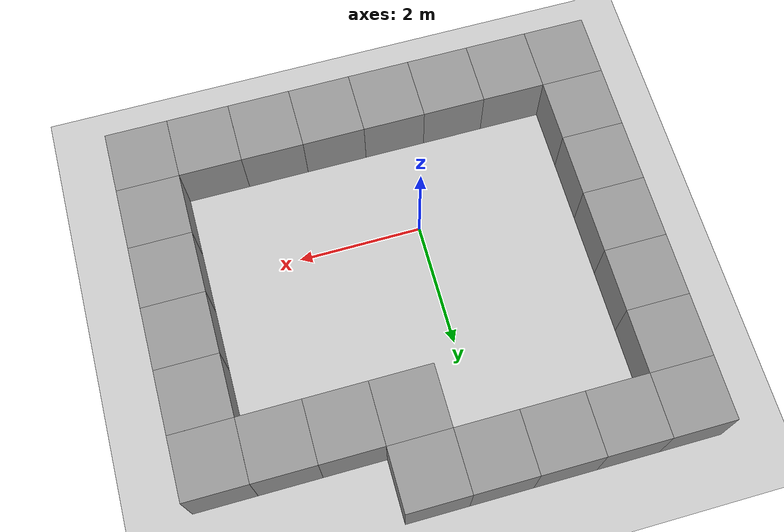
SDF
<sdf version="1.4">
 <world name="default">
  <light name="sun" type="directional">
   <pose>0 0 10 0 -0 0</pose>
   <diffuse>0.8 0.8 0.8 1</diffuse>
   <specular>0.2 0.2 0.2 1</specular>
   <attenuation>
    <range>1000</range>
    <constant>0.9</constant>
    <linear>0.01</linear>
    <quadratic>0.001</quadratic>
   </attenuation>
   <direction>-0.5 0.1 -0.9</direction>
  </light>
  <model name="ground_plane">
   <static>1</static>
   <link name="link">
    <collision name="collision">
     <geometry><plane><normal>0 0 1</normal><size>100 100</size></plane></geometry>
     <surface><friction><ode><mu>100</mu><mu2>50</mu2></ode></friction></surface>
    </collision>
    <visual name="visual">
     <cast_shadows>0</cast_shadows>
     <geometry><plane><normal>0 0 1</normal><size>100 100</size></plane></geometry>
     <material>
      <script><uri>file://media/materials/scripts/gazebo.material</uri><name>Gazebo/Grey</name></script>
     </material>
    </visual>
    <velocity_decay><linear>0</linear><angular>0</angular></velocity_decay>
   </link>
  </model>
  <physics type="ode">
   <max_step_size>0.001</max_step_size>
   <real_time_factor>1</real_time_factor>
   <real_time_update_rate>1000</real_time_update_rate>
   <gravity>0 0 -9.8</gravity>
  </physics>
  <scene><ambient>0.4 0.4 0.4 1</ambient><background>0.7 0.7 0.7 1</background><shadows>1</shadows></scene>
  <spherical_coordinates>
   <surface_model>EARTH_WGS84</surface_model>
   <latitude_deg>0</latitude_deg>
   <longitude_deg>0</longitude_deg>
   <elevation>0</elevation>
   <heading_deg>0</heading_deg>
  </spherical_coordinates>
  <model name="unit_box_1">
   <pose>-3 -2 0.5 0 -0 2e-06</pose>
   <link name="link">
    <inertial>
     <mass>1</mass>
     <inertia><ixx>1</ixx><ixy>0</ixy><ixz>0</ixz><iyy>1</iyy><iyz>0</iyz><izz>1</izz></inertia>
    </inertial>
    <collision name="collision"><geometry><box><size>1 1 1</size></box></geometry></collision>
    <visual name="visual">
     <geometry><box><size>1 1 1</size></box></geometry>
     <material>
      <script><uri>file://media/materials/scripts/gazebo.material</uri><name>Gazebo/Grey</name></script>
     </material>
    </visual>
    <velocity_decay><linear>0</linear><angular>0</angular></velocity_decay>
   </link>
   <static>0</static>
  </model>
  <model name="unit_box_2">
   <pose>-3.00001 -1 0.5 0 -0 1e-06</pose>
   <link name="link">
    <inertial>
     <mass>1</mass>
     <inertia><ixx>1</ixx><ixy>0</ixy><ixz>0</ixz><iyy>1</iyy><iyz>0</iyz><izz>1</izz></inertia>
    </inertial>
    <collision name="collision"><geometry><box><size>1 1 1</size></box></geometry></collision>
    <visual name="visual">
     <geometry><box><size>1 1 1</size></box></geometry>
     <material>
      <script><uri>file://media/materials/scripts/gazebo.material</uri><name>Gazebo/Grey</name></script>
     </material>
    </visual>
    <velocity_decay><linear>0</linear><angular>0</angular></velocity_decay>
   </link>
   <static>0</static>
  </model>
  <model name="unit_box_3">
   <pose>-2.99999 -1e-06 0.5 0 -0 0</pose>
   <link name="link">
    <inertial>
     <mass>1</mass>
     <inertia><ixx>1</ixx><ixy>0</ixy><ixz>0</ixz><iyy>1</iyy><iyz>0</iyz><izz>1</izz></inertia>
    </inertial>
    <collision name="collision"><geometry><box><size>1 1 1</size></box></geometry></collision>
    <visual name="visual">
     <geometry><box><size>1 1 1</size></box></geometry>
     <material>
      <script><uri>file://media/materials/scripts/gazebo.material</uri><name>Gazebo/Grey</name></script>
     </material>
    </visual>
    <velocity_decay><linear>0</linear><angular>0</angular></velocity_decay>
   </link>
   <static>0</static>
  </model>
  <model name="unit_box_4">
   <pose>-3 0.999999 0.5 0 -0 1e-06</pose>
   <link name="link">
    <inertial>
     <mass>1</mass>
     <inertia><ixx>1</ixx><ixy>0</ixy><ixz>0</ixz><iyy>1</iyy><iyz>0</iyz><izz>1</izz></inertia>
    </inertial>
    <collision name="collision"><geometry><box><size>1 1 1</size></box></geometry></collision>
    <visual name="visual">
     <geometry><box><size>1 1 1</size></box></geometry>
     <material>
      <script><uri>file://media/materials/scripts/gazebo.material</uri><name>Gazebo/Grey</name></script>
     </material>
    </visual>
    <velocity_decay><linear>0</linear><angular>0</angular></velocity_decay>
   </link>
   <static>0</static>
  </model>
  <model name="unit_box_5">
   <pose>-3 2 0.5 -0 -0 -0</pose>
   <link name="link">
    <inertial>
     <mass>1</mass>
     <inertia><ixx>1</ixx><ixy>0</ixy><ixz>0</ixz><iyy>1</iyy><iyz>0</iyz><izz>1</izz></inertia>
    </inertial>
    <collision name="collision"><geometry><box><size>1 1 1</size></box></geometry></collision>
    <visual name="visual">
     <geometry><box><size>1 1 1</size></box></geometry>
     <material>
      <script><uri>file://media/materials/scripts/gazebo.material</uri><name>Gazebo/Grey</name></script>
     </material>
    </visual>
    <velocity_decay><linear>0</linear><angular>0</angular></velocity_decay>
   </link>
   <static>0</static>
  </model>
  <model name="unit_box_6">
   <pose>-2 -2 0.5 0 -0 2e-06</pose>
   <link name="link">
    <inertial>
     <mass>1</mass>
     <inertia><ixx>1</ixx><ixy>0</ixy><ixz>0</ixz><iyy>1</iyy><iyz>0</iyz><izz>1</izz></inertia>
    </inertial>
    <collision name="collision"><geometry><box><size>1 1 1</size></box></geometry></collision>
    <visual name="visual">
     <geometry><box><size>1 1 1</size></box></geometry>
     <material>
      <script><uri>file://media/materials/scripts/gazebo.material</uri><name>Gazebo/Grey</name></script>
     </material>
    </visual>
    <velocity_decay><linear>0</linear><angular>0</angular></velocity_decay>
   </link>
   <static>0</static>
  </model>
  <model name="unit_box_7">
   <pose>-0.999998 -2 0.5 0 -0 2e-06</pose>
   <link name="link">
    <inertial>
     <mass>1</mass>
     <inertia><ixx>1</ixx><ixy>0</ixy><ixz>0</ixz><iyy>1</iyy><iyz>0</iyz><izz>1</izz></inertia>
    </inertial>
    <collision name="collision"><geometry><box><size>1 1 1</size></box></geometry></collision>
    <visual name="visual">
     <geometry><box><size>1 1 1</size></box></geometry>
     <material>
      <script><uri>file://media/materials/scripts/gazebo.material</uri><name>Gazebo/Grey</name></script>
     </material>
    </visual>
    <velocity_decay><linear>0</linear><angular>0</angular></velocity_decay>
   </link>
   <static>0</static>
  </model>
  <model name="unit_box_8">
   <pose>4e-06 -2 0.49999 0 -0 2e-06</pose>
   <link name="link">
    <inertial>
     <mass>1</mass>
     <inertia><ixx>1</ixx><ixy>0</ixy><ixz>0</ixz><iyy>1</iyy><iyz>0</iyz><izz>1</izz></inertia>
    </inertial>
    <collision name="collision"><geometry><box><size>1 1 1</size></box></geometry></collision>
    <visual name="visual">
     <geometry><box><size>1 1 1</size></box></geometry>
     <material>
      <script><uri>file://media/materials/scripts/gazebo.material</uri><name>Gazebo/Grey</name></script>
     </material>
    </visual>
    <velocity_decay><linear>0</linear><angular>0</angular></velocity_decay>
   </link>
   <static>0</static>
  </model>
  <model name="unit_box_9">
   <pose>1.00001 -2 0.499998 -3e-06 2e-06 2e-06</pose>
   <link name="link">
    <inertial>
     <mass>1</mass>
     <inertia><ixx>1</ixx><ixy>0</ixy><ixz>0</ixz><iyy>1</iyy><iyz>0</iyz><izz>1</izz></inertia>
    </inertial>
    <collision name="collision"><geometry><box><size>1 1 1</size></box></geometry></collision>
    <visual name="visual">
     <geometry><box><size>1 1 1</size></box></geometry>
     <material>
      <script><uri>file://media/materials/scripts/gazebo.material</uri><name>Gazebo/Grey</name></script>
     </material>
    </visual>
    <velocity_decay><linear>0</linear><angular>0</angular></velocity_decay>
   </link>
   <static>0</static>
  </model>
  <model name="unit_box_10">
   <pose>2 -2 0.5 0 -1e-06 1e-06</pose>
   <link name="link">
    <inertial>
     <mass>1</mass>
     <inertia><ixx>1</ixx><ixy>0</ixy><ixz>0</ixz><iyy>1</iyy><iyz>0</iyz><izz>1</izz></inertia>
    </inertial>
    <collision name="collision"><geometry><box><size>1 1 1</size></box></geometry></collision>
    <visual name="visual">
     <geometry><box><size>1 1 1</size></box></geometry>
     <material>
      <script><uri>file://media/materials/scripts/gazebo.material</uri><name>Gazebo/Grey</name></script>
     </material>
    </visual>
    <velocity_decay><linear>0</linear><angular>0</angular></velocity_decay>
   </link>
   <static>0</static>
  </model>
  <model name="unit_box_11">
   <pose>3.00001 -2 0.5 0 -0 1e-06</pose>
   <link name="link">
    <inertial>
     <mass>1</mass>
     <inertia><ixx>1</ixx><ixy>0</ixy><ixz>0</ixz><iyy>1</iyy><iyz>0</iyz><izz>1</izz></inertia>
    </inertial>
    <collision name="collision"><geometry><box><size>1 1 1</size></box></geometry></collision>
    <visual name="visual">
     <geometry><box><size>1 1 1</size></box></geometry>
     <material>
      <script><uri>file://media/materials/scripts/gazebo.material</uri><name>Gazebo/Grey</name></script>
     </material>
    </visual>
    <velocity_decay><linear>0</linear><angular>0</angular></velocity_decay>
   </link>
   <static>0</static>
  </model>
  <model name="unit_box_12">
   <pose>4.00001 -2 0.5 0 0 -4e-06</pose>
   <link name="link">
    <inertial>
     <mass>1</mass>
     <inertia><ixx>1</ixx><ixy>0</ixy><ixz>0</ixz><iyy>1</iyy><iyz>0</iyz><izz>1</izz></inertia>
    </inertial>
    <collision name="collision"><geometry><box><size>1 1 1</size></box></geometry></collision>
    <visual name="visual">
     <geometry><box><size>1 1 1</size></box></geometry>
     <material>
      <script><uri>file://media/materials/scripts/gazebo.material</uri><name>Gazebo/Grey</name></script>
     </material>
    </visual>
    <velocity_decay><linear>0</linear><angular>0</angular></velocity_decay>
   </link>
   <static>0</static>
  </model>
  <model name="unit_box_13">
   <pose>-3 3 0.5 0 -0 3e-06</pose>
   <link name="link">
    <inertial>
     <mass>1</mass>
     <inertia><ixx>1</ixx><ixy>0</ixy><ixz>0</ixz><iyy>1</iyy><iyz>0</iyz><izz>1</izz></inertia>
    </inertial>
    <collision name="collision"><geometry><box><size>1 1 1</size></box></geometry></collision>
    <visual name="visual">
     <geometry><box><size>1 1 1</size></box></geometry>
     <material>
      <script><uri>file://media/materials/scripts/gazebo.material</uri><name>Gazebo/Grey</name></script>
     </material>
    </visual>
    <velocity_decay><linear>0</linear><angular>0</angular></velocity_decay>
   </link>
   <static>0</static>
  </model>
  <model name="unit_box_14">
   <pose>-3 4 0.5 0 -0 2e-06</pose>
   <link name="link">
    <inertial>
     <mass>1</mass>
     <inertia><ixx>1</ixx><ixy>0</ixy><ixz>0</ixz><iyy>1</iyy><iyz>0</iyz><izz>1</izz></inertia>
    </inertial>
    <collision name="collision"><geometry><box><size>1 1 1</size></box></geometry></collision>
    <visual name="visual">
     <geometry><box><size>1 1 1</size></box></geometry>
     <material>
      <script><uri>file://media/materials/scripts/gazebo.material</uri><name>Gazebo/Grey</name></script>
     </material>
    </visual>
    <velocity_decay><linear>0</linear><angular>0</angular></velocity_decay>
   </link>
   <static>0</static>
  </model>
  <model name="unit_box_15">
   <pose>-2 4.00001 0.5 0 -0 1e-06</pose>
   <link name="link">
    <inertial>
     <mass>1</mass>
     <inertia><ixx>1</ixx><ixy>0</ixy><ixz>0</ixz><iyy>1</iyy><iyz>0</iyz><izz>1</izz></inertia>
    </inertial>
    <collision name="collision"><geometry><box><size>1 1 1</size></box></geometry></collision>
    <visual name="visual">
     <geometry><box><size>1 1 1</size></box></geometry>
     <material>
      <script><uri>file://media/materials/scripts/gazebo.material</uri><name>Gazebo/Grey</name></script>
     </material>
    </visual>
    <velocity_decay><linear>0</linear><angular>0</angular></velocity_decay>
   </link>
   <static>0</static>
  </model>
  <model name="unit_box_16">
   <pose>-0.999999 4 0.5 0 -0 2e-06</pose>
   <link name="link">
    <inertial>
     <mass>1</mass>
     <inertia><ixx>1</ixx><ixy>0</ixy><ixz>0</ixz><iyy>1</iyy><iyz>0</iyz><izz>1</izz></inertia>
    </inertial>
    <collision name="collision"><geometry><box><size>1 1 1</size></box></geometry></collision>
    <visual name="visual">
     <geometry><box><size>1 1 1</size></box></geometry>
     <material>
      <script><uri>file://media/materials/scripts/gazebo.material</uri><name>Gazebo/Grey</name></script>
     </material>
    </visual>
    <velocity_decay><linear>0</linear><angular>0</angular></velocity_decay>
   </link>
   <static>0</static>
  </model>
  <model name="unit_box_17">
   <pose>1e-06 4 0.5 0 -0 2e-06</pose>
   <link name="link">
    <inertial>
     <mass>1</mass>
     <inertia><ixx>1</ixx><ixy>0</ixy><ixz>0</ixz><iyy>1</iyy><iyz>0</iyz><izz>1</izz></inertia>
    </inertial>
    <collision name="collision"><geometry><box><size>1 1 1</size></box></geometry></collision>
    <visual name="visual">
     <geometry><box><size>1 1 1</size></box></geometry>
     <material>
      <script><uri>file://media/materials/scripts/gazebo.material</uri><name>Gazebo/Grey</name></script>
     </material>
    </visual>
    <velocity_decay><linear>0</linear><angular>0</angular></velocity_decay>
   </link>
   <static>0</static>
  </model>
  <model name="unit_box_18">
   <pose>1.00001 4 0.499996 -4e-06 -3e-06 1e-06</pose>
   <link name="link">
    <inertial>
     <mass>1</mass>
     <inertia><ixx>1</ixx><ixy>0</ixy><ixz>0</ixz><iyy>1</iyy><iyz>0</iyz><izz>1</izz></inertia>
    </inertial>
    <collision name="collision"><geometry><box><size>1 1 1</size></box></geometry></collision>
    <visual name="visual">
     <geometry><box><size>1 1 1</size></box></geometry>
     <material>
      <script><uri>file://media/materials/scripts/gazebo.material</uri><name>Gazebo/Grey</name></script>
     </material>
    </visual>
    <velocity_decay><linear>0</linear><angular>0</angular></velocity_decay>
   </link>
   <static>0</static>
  </model>
  <model name="unit_box_19">
   <pose>1 2.99999 0.499988 3e-06 2e-06 -5e-06</pose>
   <link name="link">
    <inertial>
     <mass>1</mass>
     <inertia><ixx>1</ixx><ixy>0</ixy><ixz>0</ixz><iyy>1</iyy><iyz>0</iyz><izz>1</izz></inertia>
    </inertial>
    <collision name="collision"><geometry><box><size>1 1 1</size></box></geometry></collision>
    <visual name="visual">
     <geometry><box><size>1 1 1</size></box></geometry>
     <material>
      <script><uri>file://media/materials/scripts/gazebo.material</uri><name>Gazebo/Grey</name></script>
     </material>
    </visual>
    <velocity_decay><linear>0</linear><angular>0</angular></velocity_decay>
   </link>
   <static>0</static>
  </model>
  <model name="unit_box_20">
   <pose>2 2.99999 0.499997 2e-06 -3e-06 -6e-06</pose>
   <link name="link">
    <inertial>
     <mass>1</mass>
     <inertia><ixx>1</ixx><ixy>0</ixy><ixz>0</ixz><iyy>1</iyy><iyz>0</iyz><izz>1</izz></inertia>
    </inertial>
    <collision name="collision"><geometry><box><size>1 1 1</size></box></geometry></collision>
    <visual name="visual">
     <geometry><box><size>1 1 1</size></box></geometry>
     <material>
      <script><uri>file://media/materials/scripts/gazebo.material</uri><name>Gazebo/Grey</name></script>
     </material>
    </visual>
    <velocity_decay><linear>0</linear><angular>0</angular></velocity_decay>
   </link>
   <static>0</static>
  </model>
  <model name="unit_box_21">
   <pose>4.00001 -1 0.5 -0 -0 -4e-06</pose>
   <link name="link">
    <inertial>
     <mass>1</mass>
     <inertia><ixx>1</ixx><ixy>0</ixy><ixz>0</ixz><iyy>1</iyy><iyz>0</iyz><izz>1</izz></inertia>
    </inertial>
    <collision name="collision"><geometry><box><size>1 1 1</size></box></geometry></collision>
    <visual name="visual">
     <geometry><box><size>1 1 1</size></box></geometry>
     <material>
      <script><uri>file://media/materials/scripts/gazebo.material</uri><name>Gazebo/Grey</name></script>
     </material>
    </visual>
    <velocity_decay><linear>0</linear><angular>0</angular></velocity_decay>
   </link>
   <static>0</static>
  </model>
  <model name="unit_box_22">
   <pose>4.00002 0 0.49999 0 -0 -4e-06</pose>
   <link name="link">
    <inertial>
     <mass>1</mass>
     <inertia><ixx>1</ixx><ixy>0</ixy><ixz>0</ixz><iyy>1</iyy><iyz>0</iyz><izz>1</izz></inertia>
    </inertial>
    <collision name="collision"><geometry><box><size>1 1 1</size></box></geometry></collision>
    <visual name="visual">
     <geometry><box><size>1 1 1</size></box></geometry>
     <material>
      <script><uri>file://media/materials/scripts/gazebo.material</uri><name>Gazebo/Grey</name></script>
     </material>
    </visual>
    <velocity_decay><linear>0</linear><angular>0</angular></velocity_decay>
   </link>
   <static>0</static>
  </model>
  <model name="unit_box_23">
   <pose>4.00002 1 0.499998 3.23117e-27 3e-06 -5e-06</pose>
   <link name="link">
    <inertial>
     <mass>1</mass>
     <inertia><ixx>1</ixx><ixy>0</ixy><ixz>0</ixz><iyy>1</iyy><iyz>0</iyz><izz>1</izz></inertia>
    </inertial>
    <collision name="collision"><geometry><box><size>1 1 1</size></box></geometry></collision>
    <visual name="visual">
     <geometry><box><size>1 1 1</size></box></geometry>
     <material>
      <script><uri>file://media/materials/scripts/gazebo.material</uri><name>Gazebo/Grey</name></script>
     </material>
    </visual>
    <velocity_decay><linear>0</linear><angular>0</angular></velocity_decay>
   </link>
   <static>0</static>
  </model>
  <model name="unit_box_24">
   <pose>4 2 0.5 0 -0 -6e-06</pose>
   <link name="link">
    <inertial>
     <mass>1</mass>
     <inertia><ixx>1</ixx><ixy>0</ixy><ixz>0</ixz><iyy>1</iyy><iyz>0</iyz><izz>1</izz></inertia>
    </inertial>
    <collision name="collision"><geometry><box><size>1 1 1</size></box></geometry></collision>
    <visual name="visual">
     <geometry><box><size>1 1 1</size></box></geometry>
     <material>
      <script><uri>file://media/materials/scripts/gazebo.material</uri><name>Gazebo/Grey</name></script>
     </material>
    </visual>
    <velocity_decay><linear>0</linear><angular>0</angular></velocity_decay>
   </link>
   <static>0</static>
  </model>
  <model name="unit_box_25">
   <pose>3 3 0.5 0 0 -6e-06</pose>
   <link name="link">
    <inertial>
     <mass>1</mass>
     <inertia><ixx>1</ixx><ixy>0</ixy><ixz>0</ixz><iyy>1</iyy><iyz>0</iyz><izz>1</izz></inertia>
    </inertial>
    <collision name="collision"><geometry><box><size>1 1 1</size></box></geometry></collision>
    <visual name="visual">
     <geometry><box><size>1 1 1</size></box></geometry>
     <material>
      <script><uri>file://media/materials/scripts/gazebo.material</uri><name>Gazebo/Grey</name></script>
     </material>
    </visual>
    <velocity_decay><linear>0</linear><angular>0</angular></velocity_decay>
   </link>
   <static>0</static>
  </model>
  <model name="unit_box_26">
   <pose>4.00001 3 0.499991 0 2e-06 -6e-06</pose>
   <link name="link">
    <inertial>
     <mass>1</mass>
     <inertia><ixx>1</ixx><ixy>0</ixy><ixz>0</ixz><iyy>1</iyy><iyz>0</iyz><izz>1</izz></inertia>
    </inertial>
    <collision name="collision"><geometry><box><size>1 1 1</size></box></geometry></collision>
    <visual name="visual">
     <geometry><box><size>1 1 1</size></box></geometry>
     <material>
      <script><uri>file://media/materials/scripts/gazebo.material</uri><name>Gazebo/Grey</name></script>
     </material>
    </visual>
    <velocity_decay><linear>0</linear><angular>0</angular></velocity_decay>
   </link>
   <static>0</static>
  </model>
 </world>
</sdf>
